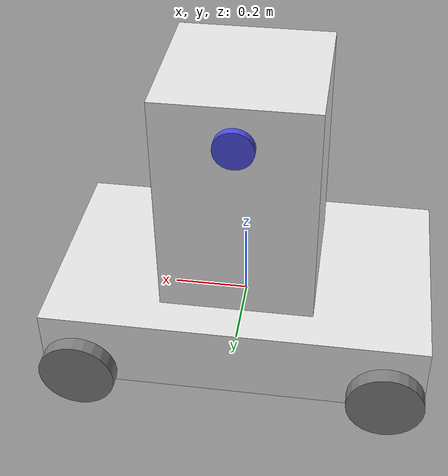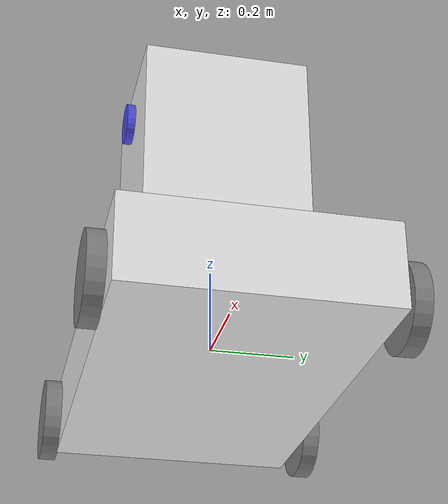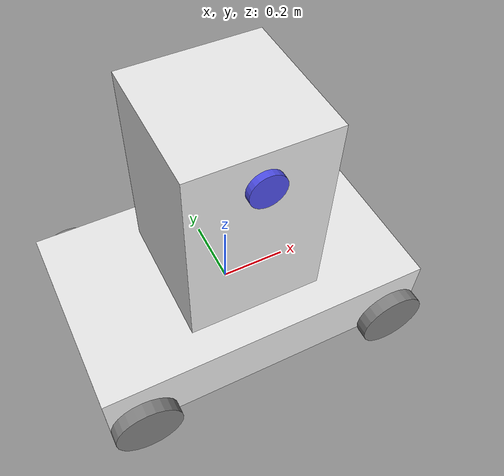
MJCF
<?xml version="1.0" encoding="utf-8"?>
<!-- from https://github.com/vikashplus/mj_envs/tree/master/mj_envs/hand_manipulation_suite/assets -->
<!-- Information about door can be found in this paper: https://arxiv.org/pdf/1709.10087.pdf -->

<mujoco model="wheeled_base">

    <actuator>
      <motor ctrllimited="false" joint="joint_fr" name="torque_fr"/>
      <motor ctrllimited="false" joint="joint_fl" name="torque_fl"/>
      <motor ctrllimited="false" joint="joint_br" name="torque_br"/>
      <motor ctrllimited="false" joint="joint_bl" name="torque_bl"/>
    </actuator>

    <asset>
      <material name="MatBase" specular="1" shininess="0.3" rgba="0.9 0.9 0.9 1" />
      <material name="MatWeel" specular="1" shininess="0.3" rgba="0.3 0.3 0.9 1" />
    </asset>

    <worldbody>
      <body name="base" pos="0 0 0">
        <inertial pos="0.0 0.0 0.137484" mass="10.0" fullinertia="0.2 0.2 0.04 6.0e-5 0.03 6.0e-5"/>
        <geom pos="0 0 0" size="0.5 0.3 0.1" type="box"
          material="MatBase"
          friction="1 1 1" group="0"
          />
        <geom pos="0 0 0.4" size="0.2 0.2 0.3" type="box"
          material="MatBase"
          friction="1 1 1" group="0"
          />

        <geom pos="0 0 0" size="0.5 0.3 0.1" type="box"
          material="MatBase"
          friction="1 1 1" group="1"
          />
        <geom pos="0 0 0.4" size="0.2 0.2 0.3" type="box"
          material="MatBase"
          friction="1 1 1" group="1"
          />

        <joint armature="0" damping="0" limited="false" name="root" pos="0 0 0" stiffness="0" type="free"/>
        <site name="origin" pos="0 0 0" rgba="0 0 0 0" size="0.005"/>

        <body name="base_com" pos="0 0 0"/>

        <body name="right_mount" pos="0.0 0.2 0.6" quat="0 0 0.707107 0.707107">
          <geom size="0.05 0.02" type="cylinder" group="0" material="MatWeel"/>
        </body>

        <body name="left_mount" pos="0.0 -0.2 0.6" quat="0 0 -0.707107 0.707107">
          <geom size="0.05 0.02" type="cylinder" group="0" material="MatWeel"/>
        </body>

        <body name="wheel_fr" pos="0.4 0.33 -0.05" quat="0 0 0.707107 0.707107">
          <inertial
            pos="0 0 0"
            mass="0.5" diaginertia="0.2 0.2 0.01"
            />
          <geom size="0.1 0.02" type="cylinder" group="0"/>
          <geom size="0.1 0.02" type="cylinder" group="1" material="MatWeel"/>
          <joint name="joint_fr"
            type="hinge" axis="0 0 1" limited="false"
            armature="0" damping="0" stiffness="0.0"
            />
        </body>

        <body name="wheel_fl" pos="0.4 -0.33 -0.05" quat="0 0 0.707107 0.707107">
          <inertial
            pos="0 0 0"
            mass="0.5" diaginertia="0.2 0.2 0.01"
            />
          <geom size="0.1 0.02" type="cylinder" group="0"/>
          <geom size="0.1 0.02" type="cylinder" group="1" material="MatWeel"/>
          <joint name="joint_fl"
            type="hinge" axis="0 0 1" limited="false"
            armature="0" damping="0" stiffness="0.0"
            />
        </body>

        <body name="wheel_br" pos="-0.4 0.33 -0.05" quat="0 0 0.707107 0.707107">
          <inertial
            pos="0 0 0"
            mass="0.5" diaginertia="0.2 0.2 0.01"
            />
          <geom size="0.1 0.02" type="cylinder" group="0"/>
          <geom size="0.1 0.02" type="cylinder" group="1" material="MatWeel"/>
          <joint name="joint_br"
            type="hinge" axis="0 0 1" limited="false"
            armature="0" damping="0" stiffness="0.0"
            />
        </body>

        <body name="wheel_bl" pos="-0.4 -0.33 -0.05" quat="0 0 0.707107 0.707107">
          <inertial
            pos="0 0 0"
            mass="0.5" diaginertia="0.2 0.2 0.01"
            />
          <geom size="0.1 0.02" type="cylinder" group="0"/>
          <geom size="0.1 0.02" type="cylinder" group="1" material="MatWeel"/>
          <joint name="joint_bl"
            type="hinge" axis="0 0 1" limited="false"
            armature="0" damping="0" stiffness="0.0"
            />
        </body>

      </body>

    </worldbody>
</mujoco>
